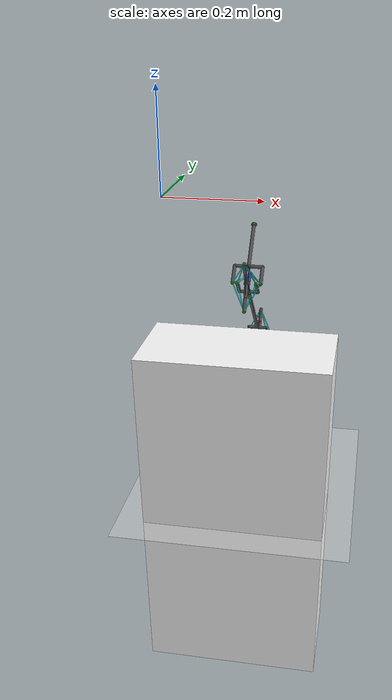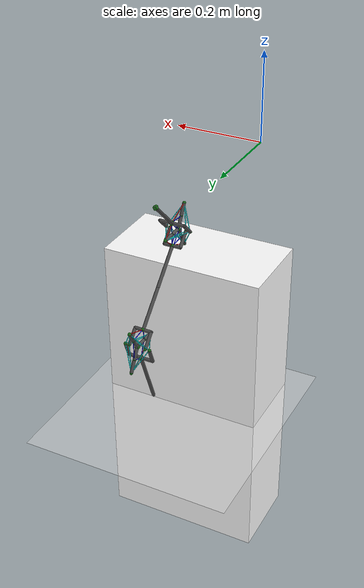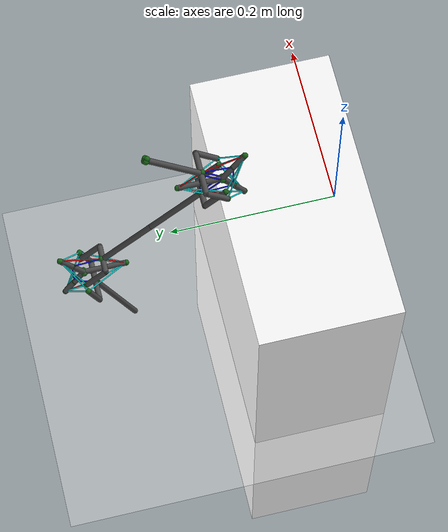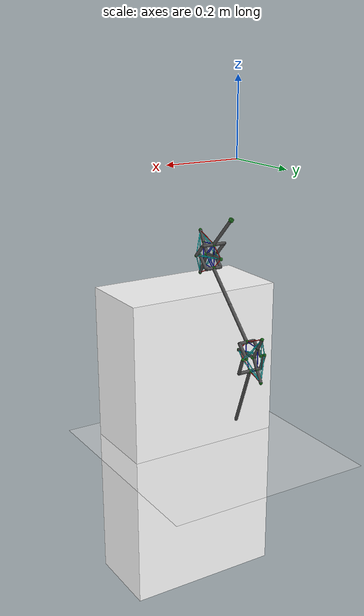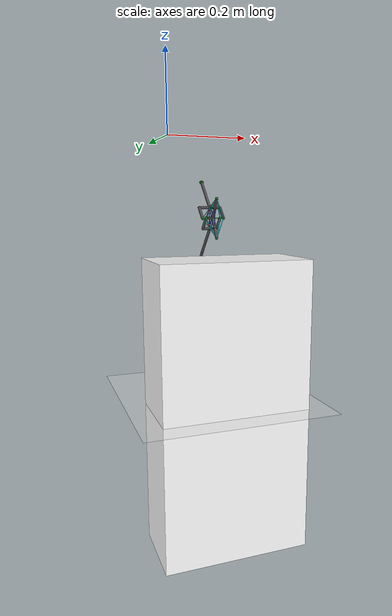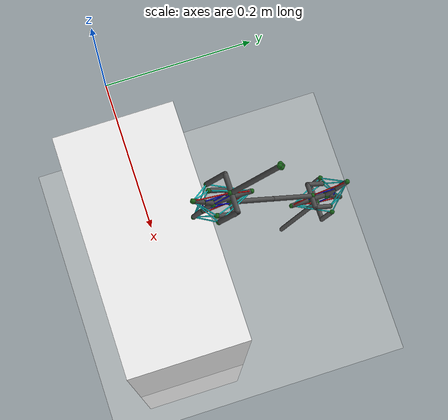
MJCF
<?xml version="1.0" ?>
<mujoco>
	<sensor/>
	<sensor/>
	<actuator>
		<muscle name="QuadSegrity1rl_hip_flexor" tendon="QuadSegrity1rl_hip_flexor" ctrllimited="false" forcelimited="false" lengthrange="-10 10" force="80" scale="200" range="0.1 1.8"/>
		<muscle name="QuadSegrity1rl_hip_extensor" tendon="QuadSegrity1rl_hip_extensor" ctrllimited="false" forcelimited="false" lengthrange="-10 10" force="80" scale="200" range="0.1 1.8"/>
		<muscle name="QuadSegrity1rl_knee_flexor" tendon="QuadSegrity1rl_knee_flexor" ctrllimited="false" forcelimited="false" lengthrange="-10 10" force="80" scale="200" range="0.1 1.8"/>
		<muscle name="QuadSegrity1rl_knee_extensor" tendon="QuadSegrity1rl_knee_extensor" ctrllimited="false" forcelimited="false" lengthrange="-10 10" force="80" scale="200" range="0.1 1.8"/>
	</actuator>
	<tendon>
		<spatial name="QuadSegrity1rl_hip_0" width="0.001" rgba="0.8 0.05 0.05 1.0" stiffness="1500" damping="10">
			<site site="QuadSegrity1rl_scalupa_5"/>
			<site site="QuadSegrity1rl_hip_B"/>
		</spatial>
		<spatial name="QuadSegrity1rl_hip_1" width="0.001" rgba="0.8 0.05 0.05 1.0" stiffness="1500" damping="10">
			<site site="QuadSegrity1rl_scalupa_4"/>
			<site site="QuadSegrity1rl_hip_D"/>
		</spatial>
		<spatial name="QuadSegrity1rl_hip_2" width="0.001" rgba="0.8 0.05 0.05 1.0" stiffness="1500" damping="10">
			<site site="QuadSegrity1rl_humerus_top_5"/>
			<site site="QuadSegrity1rl_hip_D"/>
		</spatial>
		<spatial name="QuadSegrity1rl_hip_3" width="0.001" rgba="0.8 0.05 0.05 1.0" stiffness="1500" damping="10">
			<site site="QuadSegrity1rl_humerus_top_4"/>
			<site site="QuadSegrity1rl_hip_C"/>
		</spatial>
		<spatial name="QuadSegrity1rl_hip_4" width="0.001" rgba="0.05 0.8 0.8 1.0" stiffness="1500" damping="10">
			<site site="QuadSegrity1rl_scalupa_A"/>
			<site site="QuadSegrity1rl_hip_B"/>
		</spatial>
		<spatial name="QuadSegrity1rl_hip_5" width="0.001" rgba="0.05 0.8 0.8 1.0" stiffness="1500" damping="10">
			<site site="QuadSegrity1rl_scalupa_B"/>
			<site site="QuadSegrity1rl_hip_B"/>
		</spatial>
		<spatial name="QuadSegrity1rl_hip_6" width="0.001" rgba="0.05 0.8 0.8 1.0" stiffness="1500" damping="10">
			<site site="QuadSegrity1rl_humerus_top_A"/>
			<site site="QuadSegrity1rl_hip_B"/>
		</spatial>
		<spatial name="QuadSegrity1rl_hip_7" width="0.001" rgba="0.05 0.8 0.8 1.0" stiffness="1500" damping="10">
			<site site="QuadSegrity1rl_humerus_top_B"/>
			<site site="QuadSegrity1rl_hip_B"/>
		</spatial>
		<spatial name="QuadSegrity1rl_hip_8" width="0.001" rgba="0.05 0.8 0.8 1.0" stiffness="1500" damping="10">
			<site site="QuadSegrity1rl_scalupa_A"/>
			<site site="QuadSegrity1rl_hip_C"/>
		</spatial>
		<spatial name="QuadSegrity1rl_hip_9" width="0.001" rgba="0.05 0.8 0.8 1.0" stiffness="1500" damping="10">
			<site site="QuadSegrity1rl_scalupa_B"/>
			<site site="QuadSegrity1rl_hip_C"/>
		</spatial>
		<spatial name="QuadSegrity1rl_hip_10" width="0.001" rgba="0.05 0.8 0.8 1.0" stiffness="1500" damping="10">
			<site site="QuadSegrity1rl_humerus_top_A"/>
			<site site="QuadSegrity1rl_hip_C"/>
		</spatial>
		<spatial name="QuadSegrity1rl_hip_11" width="0.001" rgba="0.05 0.8 0.8 1.0" stiffness="1500" damping="10">
			<site site="QuadSegrity1rl_humerus_top_B"/>
			<site site="QuadSegrity1rl_hip_C"/>
		</spatial>
		<spatial name="QuadSegrity1rl_hip_12" width="0.001" rgba="0.05 0.8 0.8 1.0" stiffness="1500" damping="10">
			<site site="QuadSegrity1rl_scalupa_A"/>
			<site site="QuadSegrity1rl_hip_D"/>
		</spatial>
		<spatial name="QuadSegrity1rl_hip_13" width="0.001" rgba="0.05 0.8 0.8 1.0" stiffness="1500" damping="10">
			<site site="QuadSegrity1rl_scalupa_B"/>
			<site site="QuadSegrity1rl_hip_D"/>
		</spatial>
		<spatial name="QuadSegrity1rl_hip_14" width="0.001" rgba="0.05 0.8 0.8 1.0" stiffness="1500" damping="10">
			<site site="QuadSegrity1rl_humerus_top_A"/>
			<site site="QuadSegrity1rl_hip_D"/>
		</spatial>
		<spatial name="QuadSegrity1rl_hip_15" width="0.001" rgba="0.05 0.8 0.8 1.0" stiffness="1500" damping="10">
			<site site="QuadSegrity1rl_humerus_top_B"/>
			<site site="QuadSegrity1rl_hip_D"/>
		</spatial>
		<spatial name="QuadSegrity1rl_knee_0" width="0.001" rgba="0.8 0.05 0.05 1.0" stiffness="1500" damping="10">
			<site site="QuadSegrity1rl_humerus_bot_5"/>
			<site site="QuadSegrity1rl_knee_D"/>
		</spatial>
		<spatial name="QuadSegrity1rl_knee_1" width="0.001" rgba="0.8 0.05 0.05 1.0" stiffness="1500" damping="10">
			<site site="QuadSegrity1rl_humerus_bot_4"/>
			<site site="QuadSegrity1rl_knee_C"/>
		</spatial>
		<spatial name="QuadSegrity1rl_knee_2" width="0.001" rgba="0.8 0.05 0.05 1.0" stiffness="1500" damping="10">
			<site site="QuadSegrity1rl_radius_5"/>
			<site site="QuadSegrity1rl_knee_B"/>
		</spatial>
		<spatial name="QuadSegrity1rl_knee_3" width="0.001" rgba="0.8 0.05 0.05 1.0" stiffness="1500" damping="10">
			<site site="QuadSegrity1rl_radius_4"/>
			<site site="QuadSegrity1rl_knee_D"/>
		</spatial>
		<spatial name="QuadSegrity1rl_knee_4" width="0.001" rgba="0.05 0.8 0.8 1.0" stiffness="1500" damping="10">
			<site site="QuadSegrity1rl_humerus_bot_A"/>
			<site site="QuadSegrity1rl_knee_B"/>
		</spatial>
		<spatial name="QuadSegrity1rl_knee_5" width="0.001" rgba="0.05 0.8 0.8 1.0" stiffness="1500" damping="10">
			<site site="QuadSegrity1rl_humerus_bot_B"/>
			<site site="QuadSegrity1rl_knee_B"/>
		</spatial>
		<spatial name="QuadSegrity1rl_knee_6" width="0.001" rgba="0.05 0.8 0.8 1.0" stiffness="1500" damping="10">
			<site site="QuadSegrity1rl_radius_A"/>
			<site site="QuadSegrity1rl_knee_B"/>
		</spatial>
		<spatial name="QuadSegrity1rl_knee_7" width="0.001" rgba="0.05 0.8 0.8 1.0" stiffness="1500" damping="10">
			<site site="QuadSegrity1rl_radius_B"/>
			<site site="QuadSegrity1rl_knee_B"/>
		</spatial>
		<spatial name="QuadSegrity1rl_knee_8" width="0.001" rgba="0.05 0.8 0.8 1.0" stiffness="1500" damping="10">
			<site site="QuadSegrity1rl_humerus_bot_A"/>
			<site site="QuadSegrity1rl_knee_C"/>
		</spatial>
		<spatial name="QuadSegrity1rl_knee_9" width="0.001" rgba="0.05 0.8 0.8 1.0" stiffness="1500" damping="10">
			<site site="QuadSegrity1rl_humerus_bot_B"/>
			<site site="QuadSegrity1rl_knee_C"/>
		</spatial>
		<spatial name="QuadSegrity1rl_knee_10" width="0.001" rgba="0.05 0.8 0.8 1.0" stiffness="1500" damping="10">
			<site site="QuadSegrity1rl_radius_A"/>
			<site site="QuadSegrity1rl_knee_C"/>
		</spatial>
		<spatial name="QuadSegrity1rl_knee_11" width="0.001" rgba="0.05 0.8 0.8 1.0" stiffness="1500" damping="10">
			<site site="QuadSegrity1rl_radius_B"/>
			<site site="QuadSegrity1rl_knee_C"/>
		</spatial>
		<spatial name="QuadSegrity1rl_knee_12" width="0.001" rgba="0.05 0.8 0.8 1.0" stiffness="1500" damping="10">
			<site site="QuadSegrity1rl_humerus_bot_A"/>
			<site site="QuadSegrity1rl_knee_D"/>
		</spatial>
		<spatial name="QuadSegrity1rl_knee_13" width="0.001" rgba="0.05 0.8 0.8 1.0" stiffness="1500" damping="10">
			<site site="QuadSegrity1rl_humerus_bot_B"/>
			<site site="QuadSegrity1rl_knee_D"/>
		</spatial>
		<spatial name="QuadSegrity1rl_knee_14" width="0.001" rgba="0.05 0.8 0.8 1.0" stiffness="1500" damping="10">
			<site site="QuadSegrity1rl_radius_A"/>
			<site site="QuadSegrity1rl_knee_D"/>
		</spatial>
		<spatial name="QuadSegrity1rl_knee_15" width="0.001" rgba="0.05 0.8 0.8 1.0" stiffness="1500" damping="10">
			<site site="QuadSegrity1rl_radius_B"/>
			<site site="QuadSegrity1rl_knee_D"/>
		</spatial>
		<spatial limited="false" name="QuadSegrity1rl_hip_flexor" range="-0.01 0.01" width="0.001" rgba="0.05 0.05 0.8 1" stiffness="0" damping="1">
			<site site="QuadSegrity1rl_scalupa_0"/>
			<site site="QuadSegrity1rl_scalupa_4"/>
			<site site="QuadSegrity1rl_hip_2"/>
			<site site="QuadSegrity1rl_humerus_top_4"/>
		</spatial>
		<spatial limited="false" name="QuadSegrity1rl_hip_extensor" range="-0.01 0.01" width="0.001" rgba="0.05 0.05 0.8 1" stiffness="0" damping="1">
			<site site="QuadSegrity1rl_scalupa_1"/>
			<site site="QuadSegrity1rl_scalupa_5"/>
			<site site="QuadSegrity1rl_hip_0"/>
			<site site="QuadSegrity1rl_hip_1"/>
			<site site="QuadSegrity1rl_humerus_top_5"/>
		</spatial>
		<spatial limited="false" name="QuadSegrity1rl_knee_flexor" range="-0.01 0.01" width="0.001" rgba="0.05 0.05 0.8 1" stiffness="0" damping="1">
			<site site="QuadSegrity1rl_scalupa_2"/>
			<site site="QuadSegrity1rl_scalupa_6"/>
			<site site="QuadSegrity1rl_hip_3"/>
			<site site="QuadSegrity1rl_humerus_top_6"/>
			<site site="QuadSegrity1rl_humerus_bot_5"/>
			<site site="QuadSegrity1rl_knee_2"/>
			<site site="QuadSegrity1rl_radius_5"/>
		</spatial>
		<spatial limited="false" name="QuadSegrity1rl_knee_extensor" range="-0.01 0.01" width="0.001" rgba="0.05 0.05 0.8 1" stiffness="0" damping="1">
			<site site="QuadSegrity1rl_scalupa_3"/>
			<site site="QuadSegrity1rl_scalupa_7"/>
			<site site="QuadSegrity1rl_hip_4"/>
			<site site="QuadSegrity1rl_humerus_top_7"/>
			<site site="QuadSegrity1rl_humerus_bot_4"/>
			<site site="QuadSegrity1rl_knee_1"/>
			<site site="QuadSegrity1rl_knee_0"/>
			<site site="QuadSegrity1rl_radius_4"/>
		</spatial>
	</tendon>
	<statistic extent="0.4" center="0 0 -0.1"/>
	<visual>
		<global azimuth="150" elevation="-30"/>
		<headlight ambient="0.3 0.3 0.3"/>
		<rgba haze="1 1 1 1"/>
	</visual>
	<option timestep="0.001" iterations="50" integrator="RK4" tolerance="1e-10" viscosity="0.002" density="1.2"/>
	<default>
		<joint type="ball"/>
		<muscle ctrllimited="true" ctrlrange="-1000 1000"/>
		<geom size="0.004" density="2000" rgba="0.3 0.3 0.3 1"/>
		<site size="0.0041" rgba="0.1 0.4 0.1 1"/>
	</default>
	<asset>
		<texture name="texplane" type="2d" builtin="checker" rgb1=".25 .25 .25" rgb2=".28 .28 .28" width="512" height="512" markrgb=".8 .8 .8"/>
		<texture name="skybox" type="skybox" builtin="gradient" rgb1="1 1 1" rgb2="1 1 1" width="800" height="800" mark="none" markrgb="1 1 1"/>
		<material name="matplane" reflectance="0.1" texture="texplane" texrepeat="1 1" texuniform="true"/>
	</asset>
	<worldbody>
		<geom name="floor" rgba="1 1 1 1" pos="0 0 -0.7" size="0 0 1" type="plane" material="matplane"/>
		<light directional="true" diffuse=".8 .8 .8" specular=".2 .2 .2" pos="0 0 5" dir="0 0 -1"/>
		<geom name="floor2" rgba="1 1 1 1" pos="0.15 0 -0.7" size="0.2 0.1 0.4" type="box"/>
		<body pos="0 0 0">
			<geom type="capsule" fromto="0.18 0.10100505063388332 -0.19899494936611667 0.17999999999999997 0.12928932188134523 -0.17071067811865476"/>
			<geom type="capsule" fromto="0.17999999999999997 0.12928932188134523 -0.17071067811865476 0.15 0.12928932188134523 -0.17071067811865476"/>
			<geom type="capsule" fromto="0.12 0.10100505063388332 -0.19899494936611667 0.12 0.12928932188134523 -0.17071067811865476"/>
			<geom type="capsule" fromto="0.12 0.12928932188134523 -0.17071067811865476 0.15 0.12928932188134523 -0.17071067811865476"/>
			<geom type="capsule" fromto="0.15 0.2 -0.1 0.15 0.12928932188134523 -0.17071067811865476"/>
			<site name="QuadSegrity1rl_scalupa_A" pos="0.18 0.10100505063388332 -0.19899494936611667"/>
			<site name="QuadSegrity1rl_scalupa_B" pos="0.12 0.10100505063388332 -0.19899494936611667"/>
			<site name="QuadSegrity1rl_scalupa_0" pos="0.15 0.2017677669529664 -0.10176776695296637"/>
			<site name="QuadSegrity1rl_scalupa_1" pos="0.15 0.19823223304703363 -0.09823223304703364"/>
			<site name="QuadSegrity1rl_scalupa_2" pos="0.1525 0.2 -0.1"/>
			<site name="QuadSegrity1rl_scalupa_3" pos="0.1475 0.2 -0.1"/>
			<site name="QuadSegrity1rl_scalupa_4" pos="0.15 0.1310570888343116 -0.17247844507162113"/>
			<site name="QuadSegrity1rl_scalupa_5" pos="0.15 0.12752155492837888 -0.16894291116568838"/>
			<site name="QuadSegrity1rl_scalupa_6" pos="0.1525 0.12928932188134523 -0.17071067811865476"/>
			<site name="QuadSegrity1rl_scalupa_7" pos="0.1475 0.12928932188134523 -0.17071067811865476"/>
			<body pos=" 0.15        0.10100505 -0.19899495" euler="0 0 0">
				<geom type="capsule" fromto="0.02 0.0 0.0 0.02 0.028284271247461905 -0.028284271247461898"/>
				<geom type="capsule" fromto="0.02 0.028284271247461905 -0.028284271247461898 0.0 0.028284271247461905 -0.028284271247461898"/>
				<geom type="capsule" fromto="-0.02 0.0 0.0 -0.02 0.028284271247461905 -0.028284271247461898"/>
				<geom type="capsule" fromto="-0.02 0.028284271247461905 -0.028284271247461898 0.0 0.028284271247461905 -0.028284271247461898"/>
				<geom type="capsule" fromto="0.0 0.09899494936611666 -0.09899494936611665 0.0 0.028284271247461905 -0.028284271247461898"/>
				<site name="QuadSegrity1rl_humerus_top_A" pos="0.02 0.0 0.0"/>
				<site name="QuadSegrity1rl_humerus_top_B" pos="-0.02 0.0 0.0"/>
				<site name="QuadSegrity1rl_humerus_top_4" pos="0.0 0.030052038200428274 -0.02651650429449553"/>
				<site name="QuadSegrity1rl_humerus_top_5" pos="0.0 0.026516504294495535 -0.030052038200428267"/>
				<site name="QuadSegrity1rl_humerus_top_6" pos="0.0025 0.028284271247461905 -0.028284271247461898"/>
				<site name="QuadSegrity1rl_humerus_top_7" pos="-0.0025 0.028284271247461905 -0.028284271247461898"/>
				<geom type="capsule" fromto="0.02 0.19798989873223333 -0.1979898987322333 0.02 0.16970562748477142 -0.16970562748477144"/>
				<geom type="capsule" fromto="0.02 0.16970562748477142 -0.16970562748477144 0.0 0.16970562748477142 -0.16970562748477142"/>
				<geom type="capsule" fromto="-0.02 0.19798989873223333 -0.1979898987322333 -0.02 0.16970562748477142 -0.16970562748477142"/>
				<geom type="capsule" fromto="-0.02 0.16970562748477142 -0.16970562748477142 0.0 0.16970562748477142 -0.16970562748477142"/>
				<geom type="capsule" fromto="0.0 0.09899494936611666 -0.09899494936611665 0.0 0.16970562748477142 -0.16970562748477142"/>
				<site name="QuadSegrity1rl_humerus_bot_A" pos="0.02 0.19798989873223333 -0.1979898987322333"/>
				<site name="QuadSegrity1rl_humerus_bot_B" pos="-0.02 0.19798989873223333 -0.1979898987322333"/>
				<site name="QuadSegrity1rl_humerus_bot_4" pos="0.0 0.1714733944377378 -0.16793786053180504"/>
				<site name="QuadSegrity1rl_humerus_bot_5" pos="0.0 0.16793786053180507 -0.17147339443773776"/>
				<body pos=" 0.         0.1979899 -0.1979899">
					<geom type="capsule" fromto="0.03 0.0 0.0 0.03 -0.01368080573302675 -0.037587704831436336"/>
					<geom type="capsule" fromto="0.03 -0.01368080573302675 -0.037587704831436336 0.0 -0.01368080573302675 -0.037587704831436336"/>
					<geom type="capsule" fromto="-0.03 0.0 0.0 -0.03 -0.01368080573302675 -0.037587704831436336"/>
					<geom type="capsule" fromto="-0.03 -0.01368080573302675 -0.037587704831436336 0.0 -0.01368080573302675 -0.037587704831436336"/>
					<geom type="capsule" fromto="0.0 -0.06498382723187705 -0.17854159794932262 0.0 -0.01368080573302675 -0.037587704831436336"/>
					<site name="QuadSegrity1rl_radius_A" pos="0.03 0.0 0.0"/>
					<site name="QuadSegrity1rl_radius_B" pos="-0.03 0.0 0.0"/>
					<site name="QuadSegrity1rl_radius_4" pos="0.0 -0.011331574181061978 -0.03844275518975051"/>
					<site name="QuadSegrity1rl_radius_5" pos="0.0 -0.01603003728499152 -0.03673265447312216"/>
					<joint type="hinge" axis="1 0 0" stiffness="0"/>
				</body>
				<body pos=" 0.         0.1979899 -0.1979899" euler="0 0 0">
					<geom type="capsule" fromto="0 0 0 0.0 0.02999999999999998 -0.051961524227066326"/>
					<geom type="capsule" fromto="0 0 0 0.0 0.029999999999999995 0.05196152422706631"/>
					<geom type="capsule" fromto="0 0 0 0.0 -0.06 7.347880794884118e-18"/>
					<site name="QuadSegrity1rl_knee_B" pos="0.0 0.02999999999999998 -0.051961524227066326"/>
					<site name="QuadSegrity1rl_knee_C" pos="0.0 0.029999999999999995 0.05196152422706631"/>
					<site name="QuadSegrity1rl_knee_D" pos="0.0 -0.06 7.347880794884118e-18"/>
					<site name="QuadSegrity1rl_knee_0" pos="0.0 0.01499999999999999 -0.025980762113533163"/>
					<site name="QuadSegrity1rl_knee_1" pos="0.0 0.014999999999999998 0.025980762113533156"/>
					<site name="QuadSegrity1rl_knee_2" pos="0.0 -0.03 3.673940397442059e-18"/>
					<site name="QuadSegrity1rl_knee_3" pos="0.0025 0.0 0.0"/>
					<site name="QuadSegrity1rl_knee_4" pos="-0.0025 0.0 0.0"/>
					<geom type="box" mass="0" rgba="0 0 0 0" pos="0.0 0.02999999999999998 -0.051961524227066326" size="0.02 0.02 0.008" euler="-60 0 0"/>
					<geom type="box" mass="0" rgba="0 0 0 0" pos="0.0 0.029999999999999995 0.05196152422706631" size="0.02 0.02 0.008" euler="60 0 0"/>
					<geom type="box" mass="0" rgba="0 0 0 0" pos="0.0 -0.06 7.347880794884118e-18" size="0.02 0.02 0.008" euler="180 0 0"/>
					<joint type="hinge" axis="1 0 0" stiffness="0"/>
				</body>
				<joint type="hinge" axis="1 0 0" stiffness="0"/>
			</body>
			<body pos=" 0.15        0.10100505 -0.19899495" euler="0 0 0">
				<geom type="capsule" fromto="0 0 0 0.0 -0.02999999999999999 0.05196152422706632"/>
				<geom type="capsule" fromto="0 0 0 0.0 -0.02999999999999999 -0.05196152422706632"/>
				<geom type="capsule" fromto="0 0 0 0.0 0.06 0.0"/>
				<site name="QuadSegrity1rl_hip_B" pos="0.0 -0.02999999999999999 0.05196152422706632"/>
				<site name="QuadSegrity1rl_hip_C" pos="0.0 -0.02999999999999999 -0.05196152422706632"/>
				<site name="QuadSegrity1rl_hip_D" pos="0.0 0.06 0.0"/>
				<site name="QuadSegrity1rl_hip_0" pos="0.0 -0.014999999999999994 0.02598076211353316"/>
				<site name="QuadSegrity1rl_hip_1" pos="0.0 -0.014999999999999994 -0.02598076211353316"/>
				<site name="QuadSegrity1rl_hip_2" pos="0.0 0.03 0.0"/>
				<site name="QuadSegrity1rl_hip_3" pos="0.0025 0.0 0.0"/>
				<site name="QuadSegrity1rl_hip_4" pos="-0.0025 0.0 0.0"/>
				<geom type="box" mass="0" rgba="0 0 0 0" pos="0.0 -0.02999999999999999 0.05196152422706632" size="0.02 0.02 0.008" euler="-60 0 0"/>
				<geom type="box" mass="0" rgba="0 0 0 0" pos="0.0 -0.02999999999999999 -0.05196152422706632" size="0.02 0.02 0.008" euler="60 0 0"/>
				<geom type="box" mass="0" rgba="0 0 0 0" pos="0.0 0.06 0.0" size="0.02 0.02 0.008" euler="180 0 0"/>
				<joint type="hinge" axis="1 0 0" stiffness="0"/>
			</body>
		</body>
	</worldbody>
</mujoco>
